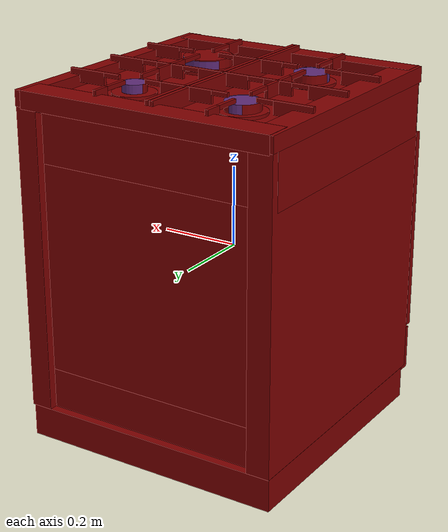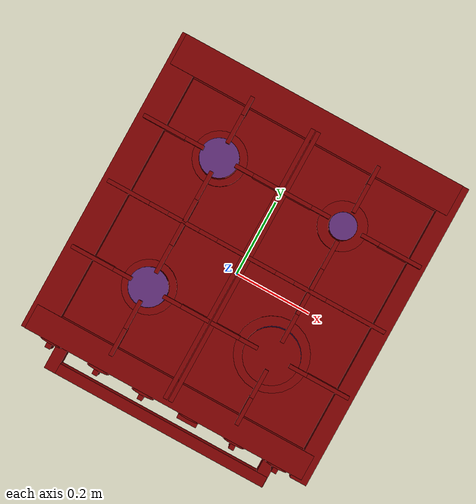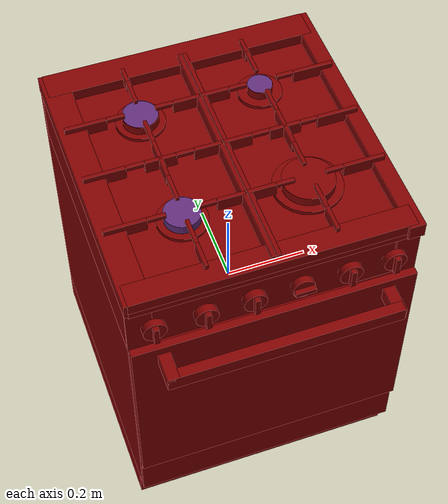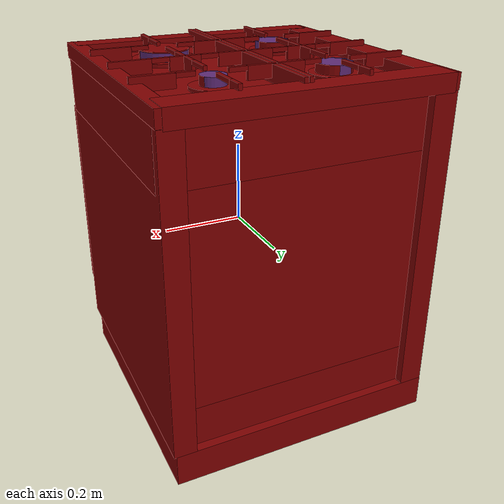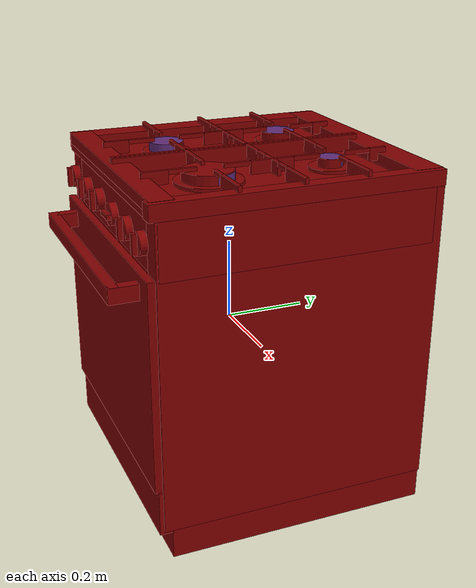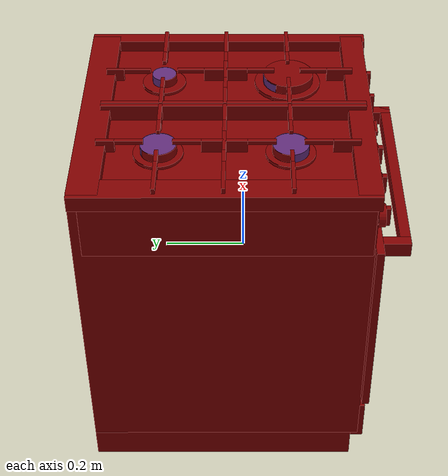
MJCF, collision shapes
<?xml version='1.0' encoding='UTF-8'?>
<mujoco model="model">
  <option timestep="0.002" gravity="0.0 0.0 -9.81"/>
  <compiler angle="radian"/>
  <asset>
    <mesh file="visuals/knob_front_left.obj" name="knob_front_left_vis"/>
    <mesh file="visuals/knob_front_right.obj" name="knob_front_right_vis"/>
    <mesh file="visuals/knob_rear_left.obj" name="knob_rear_left_vis"/>
    <mesh file="visuals/knob_rear_right.obj" name="knob_rear_right_vis"/>
    <mesh file="visuals/Body001.obj" name="Body001_vis"/>
    <mesh file="visuals/Door001.obj" name="Door001_vis"/>
    <mesh file="visuals/Door001_Clear.obj" name="Door001_Clear_vis"/>
    <mesh file="visuals/Knob001.obj" name="Knob001_vis"/>
    <mesh file="visuals/Knob002.obj" name="Knob002_vis"/>
    <mesh file="visuals/Shelf001.obj" name="Shelf001_vis"/>
    <texture file="visuals/T_BC001.png" name="Body001_material" type="2d"/>
    <material name="Body001_material" rgba="1 1 1 1.0" texture="Body001_material" shininess="0.5" specular="2"/>
    <texture file="visuals/T_BC001.png" name="knob_front_left_material" type="2d"/>
    <material name="knob_front_left_material" rgba="1 1 1 1.0" texture="knob_front_left_material" shininess="0.5" specular="0.3103448502657381"/>
    <texture file="visuals/T_BC001.png" name="knob_front_right_material" type="2d"/>
    <material name="knob_front_right_material" rgba="1 1 1 1.0" texture="knob_front_right_material" shininess="0.5" specular="0.3103448502657381"/>
    <texture file="visuals/T_BC001.png" name="knob_rear_left_material" type="2d"/>
    <material name="knob_rear_left_material" rgba="1 1 1 1.0" texture="knob_rear_left_material" shininess="0.5" specular="0.3103448502657381"/>
    <texture file="visuals/T_BC001.png" name="knob_rear_right_material" type="2d"/>
    <material name="knob_rear_right_material" rgba="1 1 1 1.0" texture="knob_rear_right_material" shininess="0.5" specular="0.3103448502657381"/>
    <texture file="visuals/T_BC001.png" name="Door001_material" type="2d"/>
    <material name="Door001_material" rgba="1 1 1 1.0" texture="Door001_material" shininess="0.5" specular="1"/>
    <texture file="visuals/T_BC001.png" name="Door001_Clear_material" type="2d"/>
    <material name="Door001_Clear_material" rgba="1 1 1 0.5" texture="Door001_Clear_material" shininess="0.5" specular="0.3103448502657381"/>
    <texture file="visuals/T_BC001.png" name="Knob001_material" type="2d"/>
    <material name="Knob001_material" rgba="1 1 1 1.0" texture="Knob001_material" shininess="0.5" specular="0.3103448502657381"/>
    <texture file="visuals/T_BC001.png" name="Knob002_material" type="2d"/>
    <material name="Knob002_material" rgba="1 1 1 1.0" texture="Knob002_material" shininess="0.5" specular="0.3103448502657381"/>
    <texture file="visuals/T_BC001.png" name="Shelf001_material" type="2d"/>
    <material name="Shelf001_material" rgba="1 1 1 1.0" texture="Shelf001_material" shininess="0.5" specular="2"/>
  </asset>
  <default>
    <default class="visual">
      <geom conaffinity="0" contype="0" group="1" type="mesh"/>
    </default>
    <default class="collision">
      <geom group="0" rgba="0.5 0 0 0.5"/>
    </default>
    <default class="spawn">
      <geom group="0" rgba="1 1 1 0.5" contype="0" conaffinity="0"/>
      <site group="0" rgba="1 1 1 0.5"/>
    </default>
    <default class="region">
      <geom group="1" conaffinity="0" contype="0" rgba="0 1 0 0"/>
    </default>
  </default>
  <worldbody>
    <body>
      <body name="object">
        <geom mesh="Body001_vis" type="mesh" solimp="0.998 0.998 0.001" solref="0.001 1" friction="0.95 0.3 0.1" class="visual" material="Body001_material"/>
        <geom class="collision" type="box" pos="-0.305462 0.040951 0.409392" size="0.03157045692205429 0.3458944261074066 0.019299974665045738" quat="1.0 0.0 0.0 0.0" density="1000.0"/>
        <geom class="collision" type="box" pos="0.318749 0.037425 0.409556" size="0.019163703545928 0.3494206964969635 0.01913635991513729" quat="1.0 0.0 0.0 0.0" density="1000.0"/>
        <geom class="collision" type="box" pos="-0.002324 -0.277691 0.407485" size="0.32577696442604065 0.027789197862148285 0.021897345781326294" quat="1.0 0.0 0.0 0.0" density="1000.0"/>
        <geom class="collision" type="box" pos="-0.002324 0.351953 0.407485" size="0.32577696442604065 0.03511851653456688 0.02189701981842518" quat="1.0 0.0 0.0 0.0" density="1000.0"/>
        <geom class="collision" type="box" pos="0.008568 0.023239 0.420267" size="0.004960097838193178 0.3158468008041382 0.02108476310968399" quat="1.0 0.0 0.0 0.0" density="1000.0"/>
        <geom class="collision" type="box" pos="-0.003713 0.023239 0.420267" size="0.004969475325196981 0.3158468008041382 0.021084768697619438" quat="1.0 0.0 0.0 0.0" density="1000.0"/>
        <geom class="collision" type="box" pos="-0.144749 0.315958 0.426839" size="0.004397799726575613 0.02148868516087532 0.015702398493885994" quat="1.0 0.0 0.0 0.0" density="1000.0"/>
        <geom class="collision" type="box" pos="-0.144749 0.261682 0.437383" size="0.0043978001922369 0.033020973205566406 0.005158464889973402" quat="1.0 0.0 0.0 0.0" density="1000.0"/>
        <geom class="collision" type="box" pos="-0.144749 0.070901 0.426839" size="0.004397804383188486 0.02569890394806862 0.015702396631240845" quat="1.0 0.0 0.0 0.0" density="1000.0"/>
        <geom class="collision" type="box" pos="-0.144749 0.129388 0.437383" size="0.004397806245833635 0.033021003007888794 0.005158460699021816" quat="1.0 0.0 0.0 0.0" density="1000.0"/>
        <geom class="collision" type="box" pos="-0.144749 -0.042861 0.437383" size="0.004397801589220762 0.03302101418375969 0.005158466286957264" quat="1.0 0.0 0.0 0.0" density="1000.0"/>
        <geom class="collision" type="box" pos="-0.144749 0.015626 0.426839" size="0.0043978020548820496 0.025698933750391006 0.015702402219176292" quat="1.0 0.0 0.0 0.0" density="1000.0"/>
        <geom class="collision" type="box" pos="-0.087475 0.196648 0.437383" size="0.02107231318950653 0.0043977368623018265 0.005158462096005678" quat="1.0 0.0 0.0 0.0" density="1000.0"/>
        <geom class="collision" type="box" pos="-0.033903 0.196648 0.426839" size="0.03273475915193558 0.004397739190608263 0.015702402219176292" quat="1.0 0.0 0.0 0.0" density="1000.0"/>
        <geom class="collision" type="box" pos="-0.274290 0.196648 0.426839" size="0.049077536910772324 0.004397742450237274 0.01570240594446659" quat="1.0 0.0 0.0 0.0" density="1000.0"/>
        <geom class="collision" type="box" pos="-0.203875 0.196648 0.437383" size="0.02157224901020527 0.0043977429158985615 0.0051584672182798386" quat="1.0 0.0 0.0 0.0" density="1000.0"/>
        <geom class="collision" type="box" pos="-0.144749 -0.172905 0.437383" size="0.0043978095054626465 0.03302110359072685 0.005158463958650827" quat="1.0 0.0 0.0 0.0" density="1000.0"/>
        <geom class="collision" type="box" pos="-0.144749 -0.237330 0.426839" size="0.0043978095054626465 0.03163647651672363 0.01570240594446659" quat="1.0 0.0 0.0 0.0" density="1000.0"/>
        <geom class="collision" type="box" pos="-0.203875 -0.110160 0.437383" size="0.02157224901020527 0.004397748503834009 0.0051584686152637005" quat="1.0 0.0 0.0 0.0" density="1000.0"/>
        <geom class="collision" type="box" pos="-0.274290 -0.110160 0.426839" size="0.049077536910772324 0.00439775176346302 0.01570240966975689" quat="1.0 0.0 0.0 0.0" density="1000.0"/>
        <geom class="collision" type="box" pos="-0.033903 -0.110160 0.426839" size="0.03273475915193558 0.00439775176346302 0.01570240780711174" quat="1.0 0.0 0.0 0.0" density="1000.0"/>
        <geom class="collision" type="box" pos="-0.087475 -0.110160 0.437383" size="0.02107231318950653 0.004397753160446882 0.005158466286957264" quat="1.0 0.0 0.0 0.0" density="1000.0"/>
        <geom class="collision" type="box" pos="-0.087475 0.043919 0.437383" size="0.02107231318950653 0.0043977550230920315 0.005158466752618551" quat="1.0 0.0 0.0 0.0" density="1000.0"/>
        <geom class="collision" type="box" pos="-0.033903 0.043919 0.426839" size="0.03273475915193558 0.004397757351398468 0.01570241153240204" quat="1.0 0.0 0.0 0.0" density="1000.0"/>
        <geom class="collision" type="box" pos="-0.274290 0.043919 0.426839" size="0.049077536910772324 0.004397760611027479 0.015702415257692337" quat="1.0 0.0 0.0 0.0" density="1000.0"/>
        <geom class="collision" type="box" pos="-0.203875 0.043919 0.437383" size="0.02157224901020527 0.0043977610766887665 0.005158471874892712" quat="1.0 0.0 0.0 0.0" density="1000.0"/>
        <geom class="collision" type="box" pos="-0.144556 0.043919 0.426839" size="0.03735579550266266 0.004397762939333916 0.015702413395047188" quat="1.0 0.0 0.0 0.0" density="1000.0"/>
        <geom class="collision" type="box" pos="0.150867 0.043919 0.426839" size="0.03735579550266266 0.004397764801979065 0.015702415257692337" quat="1.0 0.0 0.0 0.0" density="1000.0"/>
        <geom class="collision" type="box" pos="0.091548 0.043919 0.437383" size="0.02157224901020527 0.004397766664624214 0.0051584732718765736" quat="1.0 0.0 0.0 0.0" density="1000.0"/>
        <geom class="collision" type="box" pos="0.036660 0.043919 0.426839" size="0.03355081379413605 0.004397769458591938 0.015702418982982635" quat="1.0 0.0 0.0 0.0" density="1000.0"/>
        <geom class="collision" type="box" pos="0.150675 0.015626 0.426839" size="0.004397810902446508 0.025699105113744736 0.015702420845627785" quat="1.0 0.0 0.0 0.0" density="1000.0"/>
        <geom class="collision" type="box" pos="0.150675 -0.042861 0.437383" size="0.004397811368107796 0.03302131965756416 0.005158476065844297" quat="1.0 0.0 0.0 0.0" density="1000.0"/>
        <geom class="collision" type="box" pos="0.150675 0.129388 0.437383" size="0.004397816956043243 0.03302133455872536 0.005158471409231424" quat="1.0 0.0 0.0 0.0" density="1000.0"/>
        <geom class="collision" type="box" pos="0.150675 0.070901 0.426839" size="0.004397816024720669 0.025699129328131676 0.015702420845627785" quat="1.0 0.0 0.0 0.0" density="1000.0"/>
        <geom class="collision" type="box" pos="0.277685 0.043919 0.426839" size="0.048899609595537186 0.004397777374833822 0.015702420845627785" quat="1.0 0.0 0.0 0.0" density="1000.0"/>
        <geom class="collision" type="box" pos="0.207948 0.043919 0.437383" size="0.02107231318950653 0.004397778771817684 0.005158472806215286" quat="1.0 0.0 0.0 0.0" density="1000.0"/>
        <geom class="collision" type="box" pos="0.150675 0.315958 0.426839" size="0.004397813696414232 0.02148890309035778 0.015702426433563232" quat="1.0 0.0 0.0 0.0" density="1000.0"/>
        <geom class="collision" type="box" pos="0.207948 -0.110160 0.437383" size="0.02107231318950653 0.004397782497107983 0.005158473737537861" quat="1.0 0.0 0.0 0.0" density="1000.0"/>
        <geom class="collision" type="box" pos="0.277685 -0.110160 0.426839" size="0.048899609595537186 0.004397784359753132 0.015702424570918083" quat="1.0 0.0 0.0 0.0" density="1000.0"/>
        <geom class="collision" type="box" pos="0.036660 -0.110160 0.426839" size="0.03355081379413605 0.004397787619382143 0.01570242829620838" quat="1.0 0.0 0.0 0.0" density="1000.0"/>
        <geom class="collision" type="box" pos="0.091548 -0.110160 0.437383" size="0.02157224901020527 0.00439778808504343 0.005158478859812021" quat="1.0 0.0 0.0 0.0" density="1000.0"/>
        <geom class="collision" type="box" pos="0.150675 -0.237330 0.426839" size="0.004397820681333542 0.03163682296872139 0.01570242829620838" quat="1.0 0.0 0.0 0.0" density="1000.0"/>
        <geom class="collision" type="box" pos="0.150675 -0.172905 0.437383" size="0.0043978216126561165 0.033021479845047 0.005158476065844297" quat="1.0 0.0 0.0 0.0" density="1000.0"/>
        <geom class="collision" type="box" pos="0.091548 0.196648 0.437383" size="0.02157224901020527 0.004397793672978878 0.005158480256795883" quat="1.0 0.0 0.0 0.0" density="1000.0"/>
        <geom class="collision" type="box" pos="0.036660 0.196648 0.426839" size="0.03355081379413605 0.004397796932607889 0.01570243388414383" quat="1.0 0.0 0.0 0.0" density="1000.0"/>
        <geom class="collision" type="box" pos="0.277685 0.196648 0.426839" size="0.048899609595537186 0.0043977973982691765 0.01570243202149868" quat="1.0 0.0 0.0 0.0" density="1000.0"/>
        <geom class="collision" type="box" pos="0.207948 0.196648 0.437383" size="0.02107231318950653 0.004397798329591751 0.005158477928489447" quat="1.0 0.0 0.0 0.0" density="1000.0"/>
        <geom class="collision" type="box" pos="0.150675 0.261682 0.437383" size="0.004397818818688393 0.03302155062556267 0.005158483516424894" quat="1.0 0.0 0.0 0.0" density="1000.0"/>
        <geom class="collision" type="box" pos="-0.002324 0.038982 0.393487" size="0.32577696442604065 0.34452980756759644 0.007899037562310696" quat="1.0 0.0 0.0 0.0" density="1000.0"/>
        <geom class="collision" type="cylinder" pos="0.146283 -0.109017 0.405110" size="0.08079339563846588 0.005118147004395723" quat="1.0 0.0 0.0 0.0" density="1000.0"/>
        <geom class="collision" type="cylinder" pos="0.146283 -0.111128 0.421561" size="0.06078436225652695 0.011589274741709232" quat="1.0 0.0 0.0 0.0" density="1000.0"/>
        <geom class="collision" type="cylinder" pos="0.146283 0.194518 0.419994" size="0.029738014563918114 0.010956469923257828" quat="1.0 0.0 0.0 0.0" density="1000.0"/>
        <geom class="collision" type="cylinder" pos="0.146283 0.195913 0.405299" size="0.05338374152779579 0.004203695338219404" quat="1.0 0.0 0.0 0.0" density="1000.0"/>
        <geom class="collision" type="cylinder" pos="-0.145372 0.195979 0.404644" size="0.058421410620212555 0.004600385669618845" quat="1.0 0.0 0.0 0.0" density="1000.0"/>
        <geom class="collision" type="cylinder" pos="-0.145372 0.194452 0.417969" size="0.04236326739192009 0.012850306928157806" quat="1.0 0.0 0.0 0.0" density="1000.0"/>
        <geom class="collision" type="cylinder" pos="-0.145372 -0.108553 0.417969" size="0.04236326739192009 0.012850306928157806" quat="1.0 0.0 0.0 0.0" density="1000.0"/>
        <geom class="collision" type="cylinder" pos="-0.145372 -0.109101 0.404644" size="0.058421410620212555 0.004600385669618845" quat="1.0 0.0 0.0 0.0" density="1000.0"/>
        <geom class="collision" type="box" pos="-0.002324 0.053517 0.323900" size="0.3257769048213959 0.30906498432159424 0.06580030918121338" quat="1.0 0.0 0.0 0.0" density="1000.0"/>
        <geom class="collision" type="box" pos="0.000660 0.035356 0.324096" size="0.33674007654190063 0.32959872484207153 0.06599660217761993" quat="1.0 0.0 0.0 0.0" density="1000.0"/>
        <geom class="collision" type="box" pos="-0.305905 0.044330 0.013995" size="0.02965746447443962 0.34163305163383484 0.37609729170799255" quat="1.0 0.0 0.0 0.0" density="1000.0"/>
        <geom class="collision" type="box" pos="0.309252 0.042976 0.013799" size="0.027419276535511017 0.3429873585700989 0.3759011924266815" quat="1.0 0.0 0.0 0.0" density="1000.0"/>
        <geom class="collision" type="box" pos="-0.003206 0.355740 0.001379" size="0.32665953040122986 0.009213967248797417 0.26213300228118896" quat="1.0 0.0 0.0 0.0" density="1000.0"/>
        <geom class="collision" type="box" pos="-0.002324 0.042568 -0.304051" size="0.32577696442604065 0.32221418619155884 0.0658002570271492" quat="1.0 0.0 0.0 0.0" density="1000.0"/>
        <geom class="collision" type="box" pos="-0.001652 -0.293878 -0.312797" size="0.3337043821811676 0.016561346128582954 0.05705389380455017" quat="1.0 0.0 0.0 0.0" density="1000.0"/>
        <geom class="collision" type="box" pos="-0.002656 0.053517 -0.401760" size="0.3334242105484009 0.33244603872299194 0.03992301598191261" quat="1.0 0.0 0.0 0.0" density="1000.0"/>
        <geom class="collision" type="box" pos="-0.274674 0.084132 -0.000818" size="0.0062475260347127914 0.23480769991874695 0.007247717119753361" quat="1.0 0.0 0.0 0.0" density="1000.0"/>
        <geom class="collision" type="box" pos="0.279835 0.084132 -0.000818" size="0.008244672790169716 0.23480767011642456 0.0072477166540920734" quat="1.0 0.0 0.0 0.0" density="1000.0"/>
        <body name="knob_front_left">
          <joint axis="0.0 -1.0 0.0" pos="-0.276719 -0.316038 0.329317" limited="true" name="knob_front_left_joint" range="0.0 3.141592653589793" type="hinge" damping="0.05" armature="0.001"/>
          <geom mesh="knob_front_left_vis" type="mesh" solimp="0.998 0.998 0.001" solref="0.001 1" friction="0.95 0.3 0.1" class="visual" material="knob_front_left_material"/>
          <geom class="collision" type="cylinder" pos="-0.277067 -0.311399 0.329113" size="0.02695857733488083 0.008445155806839466" quat="0.70710688829422 0.7071066498756409 0.0 0.0" density="1000.0"/>
          <geom class="collision" type="box" pos="-0.277081 -0.324262 0.328088" size="0.005962887778878212 0.007199874613434076 0.024003246799111366" quat="1.0 0.0 0.0 0.0" density="1000.0" name="knob_front_left_main"/>
        </body>
        <body name="knob_front_right">
          <joint axis="0.0 -1.0 0.0" pos="0.274719 -0.316038 0.329317" limited="true" name="knob_front_right_joint" range="0.0 3.141592653589793" type="hinge" damping="0.05" armature="0.001"/>
          <geom mesh="knob_front_right_vis" type="mesh" solimp="0.998 0.998 0.001" solref="0.001 1" friction="0.95 0.3 0.1" class="visual" material="knob_front_right_material"/>
          <geom class="collision" type="cylinder" pos="0.274649 -0.311764 0.329186" size="0.026809222996234894 0.00839253980666399" quat="0.7071068286895752 0.7071067690849304 0.0 0.0" density="1000.0"/>
          <geom class="collision" type="box" pos="0.274634 -0.324550 0.328166" size="0.005929835140705109 0.007159987930208445 0.023870185017585754" quat="1.0 0.0 0.0 0.0" density="1000.0" name="knob_front_right_main"/>
        </body>
        <body name="knob_rear_left">
          <joint axis="0.0 -1.0 0.0" pos="-0.161563 -0.316038 0.329317" limited="true" name="knob_rear_left_joint" range="0.0 3.141592653589793" type="hinge" damping="0.05" armature="0.001"/>
          <geom mesh="knob_rear_left_vis" type="mesh" solimp="0.998 0.998 0.001" solref="0.001 1" friction="0.95 0.3 0.1" class="visual" material="knob_rear_left_material"/>
          <geom class="collision" type="cylinder" pos="-0.161426 -0.312384 0.329110" size="0.026647401973605156 0.009387573227286339" quat="0.7071068286895752 0.7071067690849304 0.0 0.0" density="1000.0"/>
          <geom class="collision" type="box" pos="-0.161440 -0.326138 0.329003" size="0.0058941105380654335 0.00711691752076149 0.023726284503936768" quat="1.0 0.0 0.0 0.0" density="1000.0" name="knob_rear_left_main"/>
        </body>
        <body name="knob_rear_right">
          <joint axis="0.0 -1.0 0.0" pos="0.170540 -0.316038 0.329317" limited="true" name="knob_rear_right_joint" range="0.0 3.141592653589793" type="hinge" damping="0.05" armature="0.001"/>
          <geom mesh="knob_rear_right_vis" type="mesh" solimp="0.998 0.998 0.001" solref="0.001 1" friction="0.95 0.3 0.1" class="visual" material="knob_rear_right_material"/>
          <geom class="collision" type="cylinder" pos="0.170653 -0.311728 0.329130" size="0.02718520164489746 0.008524991571903229" quat="0.7071068286895752 0.7071067690849304 0.0 0.0" density="1000.0"/>
          <geom class="collision" type="box" pos="0.170639 -0.324708 0.328096" size="0.006013091653585434 0.007260401267558336 0.02420542575418949" quat="1.0 0.0 0.0 0.0" density="1000.0" name="knob_rear_right_main"/>
        </body>
        <body name="Door001">
          <joint axis="1.0 0.0 0.0" pos="0.000730 -0.322967 -0.252824" limited="true" name="Door001_joint" range="0.0 1.5707963267948966" type="hinge" damping="1" frictionloss="1" armature=".01" stiffness="0.05"/>
          <geom mesh="Door001_vis" type="mesh" solimp="0.998 0.998 0.001" solref="0.001 1" friction="0.95 0.3 0.1" class="visual" material="Door001_material"/>
          <geom class="collision" type="box" pos="0.000447 -0.310617 0.006343" size="0.3348972797393799 0.009196015074849129 0.2565017342567444" quat="1.0 0.0 0.0 0.0" density="1000.0"/>
          <geom class="collision" type="box" pos="-0.261671 -0.354205 0.221699" size="0.013943732716143131 0.035224854946136475 0.018639419227838516" quat="1.0 0.0 0.0 0.0" density="1000.0"/>
          <geom class="collision" type="box" pos="0.002198 -0.376820 0.221699" size="0.2778121829032898 0.012609956786036491 0.018639421090483665" quat="1.0 0.0 0.0 0.0" density="1000.0"/>
          <geom class="collision" type="box" pos="0.267284 -0.354205 0.221699" size="0.01394373457878828 0.03522485867142677 0.018639421090483665" quat="1.0 0.0 0.0 0.0" density="1000.0"/>
          <body name="Door001_Clear">
            <geom mesh="Door001_Clear_vis" type="mesh" solimp="0.998 0.998 0.001" solref="0.001 1" friction="0.95 0.3 0.1" class="visual" material="Door001_Clear_material"/>
            <geom class="collision" type="box" pos="0.006120 -0.310203 0.007649" size="0.23763589560985565 0.008296974003314972 0.18880362808704376" quat="1.0 0.0 0.0 0.0" density="1000.0"/>
          </body>
        </body>
        <body name="Knob001">
          <joint axis="0.0 1.0 0.0" pos="-0.051765 -0.316038 0.330918" limited="true" name="Knob001_joint" range="0.0 5.585053606381854" type="hinge" damping="0.05" armature="0.001"/>
          <geom mesh="Knob001_vis" type="mesh" solimp="0.998 0.998 0.001" solref="0.001 1" friction="0.95 0.3 0.1" class="visual" material="Knob001_material"/>
          <geom class="collision" type="cylinder" pos="-0.051642 -0.312230 0.330771" size="0.02685207687318325 0.009459678083658218" quat="0.7071068286895752 0.7071067690849304 0.0 0.0" density="1000.0"/>
          <geom class="collision" type="box" pos="-0.051656 -0.326089 0.330438" size="0.005939309950917959 0.007171344012022018 0.023908130824565887" quat="1.0 0.0 0.0 0.0" density="1000.0"/>
        </body>
        <body name="Knob002">
          <joint axis="0.0 1.0 0.0" pos="0.059303 -0.316038 0.328482" limited="true" name="Knob002_joint" range="0.0 5.235987755982989" type="hinge" damping="0.05" armature="0.001"/>
          <geom mesh="Knob002_vis" type="mesh" solimp="0.998 0.998 0.001" solref="0.001 1" friction="0.95 0.3 0.1" class="visual" material="Knob002_material"/>
          <geom class="collision" type="cylinder" pos="0.059404 -0.311357 0.328351" size="0.026502354070544243 0.008284438401460648" quat="0.5 0.5 -0.4999999701976776 0.5" density="1000.0"/>
          <geom class="collision" type="box" pos="0.060012 -0.323984 0.328038" size="0.023597078397870064 0.007077894173562527 0.005862010642886162" quat="1.0 0.0 0.0 0.0" density="1000.0"/>
        </body>
        <body name="Shelf001">
          <joint axis="0.0 -1.0 0.0" pos="0.003009 0.092616 0.012799" limited="true" name="Shelf001_joint" range="0.0 0.4" type="slide" damping="1" frictionloss="1" armature=".01" stiffness="0.05"/>
          <geom mesh="Shelf001_vis" type="mesh" solimp="0.998 0.998 0.001" solref="0.001 1" friction="0.95 0.3 0.1" class="visual" material="Shelf001_material"/>
          <geom class="collision" type="box" pos="0.002718 0.081029 0.011325" size="0.27813947200775146 0.261966347694397 0.003759667044505477" quat="1.0 0.0 0.0 0.0" density="1000.0"/>
        </body>
        <geom class="region" name="reg_int" type="box" pos="0.001952499999999996 0.03669449999999999 0.006797500000000012" size="0.28030849999999996 0.3151935 0.2520965"/>
        <site type="cylinder" rgba="0.3 0.4 1 0.5" size="0.04184328764677048 0.014999999664723873" pos="-0.145453 0.194998 0.417085" name="burner_on_rear_left"/>
        <site type="cylinder" rgba="0.3 0.4 1 0.5" size="0.0424492284655571 0.014999999664723873" pos="-0.145339 -0.109038 0.416739" name="burner_on_front_left"/>
        <site type="cylinder" rgba="0.3 0.4 1 0.5" size="0.060189858078956604 0.014999999664723873" pos="0.146815 -0.109131 0.415542" name="burner_on_front_right"/>
        <site type="cylinder" rgba="0.3 0.4 1 0.5" size="0.02951763942837715 0.014999999664723873" pos="0.146182 0.195137 0.416588" name="burner_on_rear_right"/>
        <site name="burner_rear_left_place_site" type="cylinder" rgba="0.3 0.4 1 0" size="0.04184328764677048 0.014999999664723873" pos="-0.145453 0.194998 0.417085"/>
        <site name="burner_front_left_place_site" type="cylinder" rgba="0.3 0.4 1 0" size="0.0424492284655571 0.014999999664723873" pos="-0.145339 -0.109038 0.416739"/>
        <site name="burner_front_right_place_site" type="cylinder" rgba="0.3 0.4 1 0" size="0.060189858078956604 0.014999999664723873" pos="0.146815 -0.109131 0.415542"/>
        <site name="burner_rear_right_place_site" type="cylinder" rgba="0.3 0.4 1 0" size="0.02951763942837715 0.014999999664723873" pos="0.146182 0.195137 0.416588"/>
        <geom class="region" name="reg_main" type="box" pos="0.0 0.032749 -0.021262000000000003" size="0.341798 0.35622699999999996 0.420421"/>
      </body>
    </body>
  </worldbody>
  <actuator>
    <motor name="knob_front_left_joint_actuator" joint="knob_front_left_joint" gear="10"/>
    <motor name="knob_front_right_joint_actuator" joint="knob_front_right_joint" gear="10"/>
    <motor name="knob_rear_left_joint_actuator" joint="knob_rear_left_joint" gear="10"/>
    <motor name="knob_rear_right_joint_actuator" joint="knob_rear_right_joint" gear="10"/>
    <motor name="Door001_joint_actuator" joint="Door001_joint" gear="50"/>
    <motor name="Knob001_joint_actuator" joint="Knob001_joint" gear="50"/>
    <motor name="Knob002_joint_actuator" joint="Knob002_joint" gear="50"/>
    <motor name="Shelf001_joint_actuator" joint="Shelf001_joint" gear="50"/>
  </actuator>
</mujoco>
